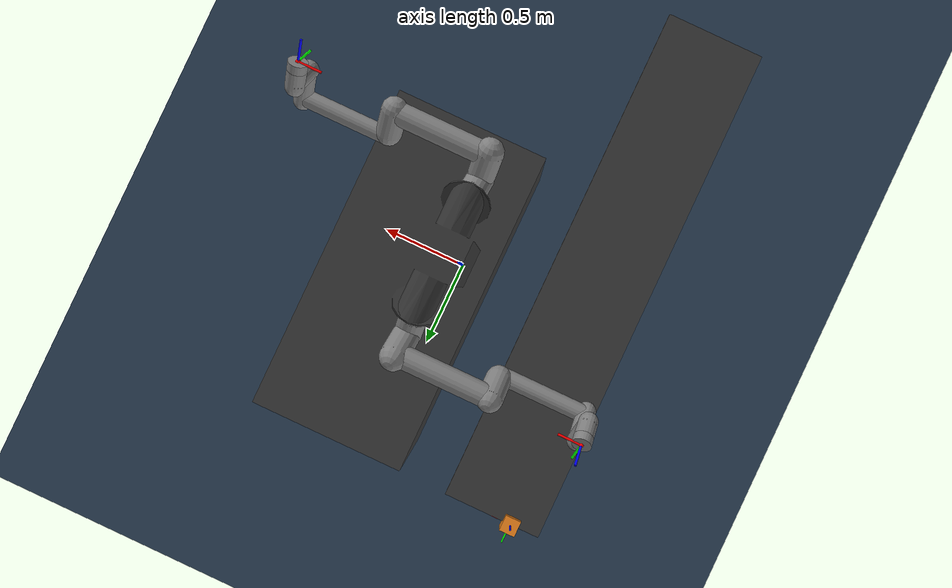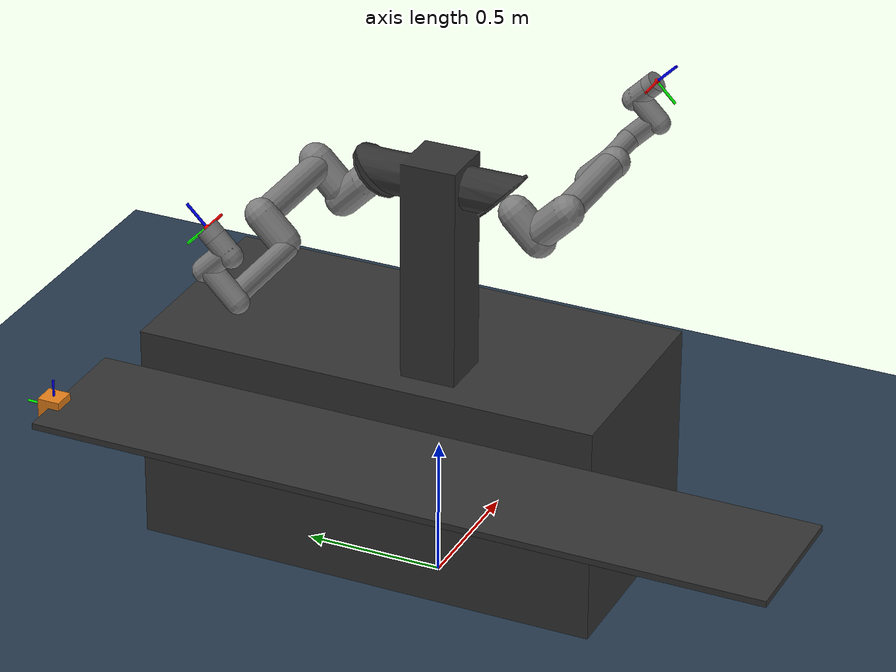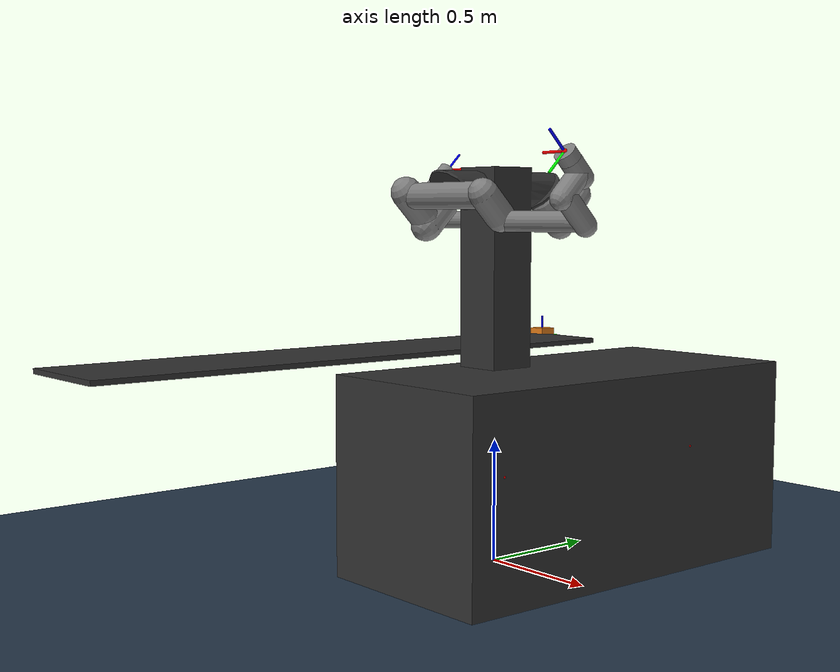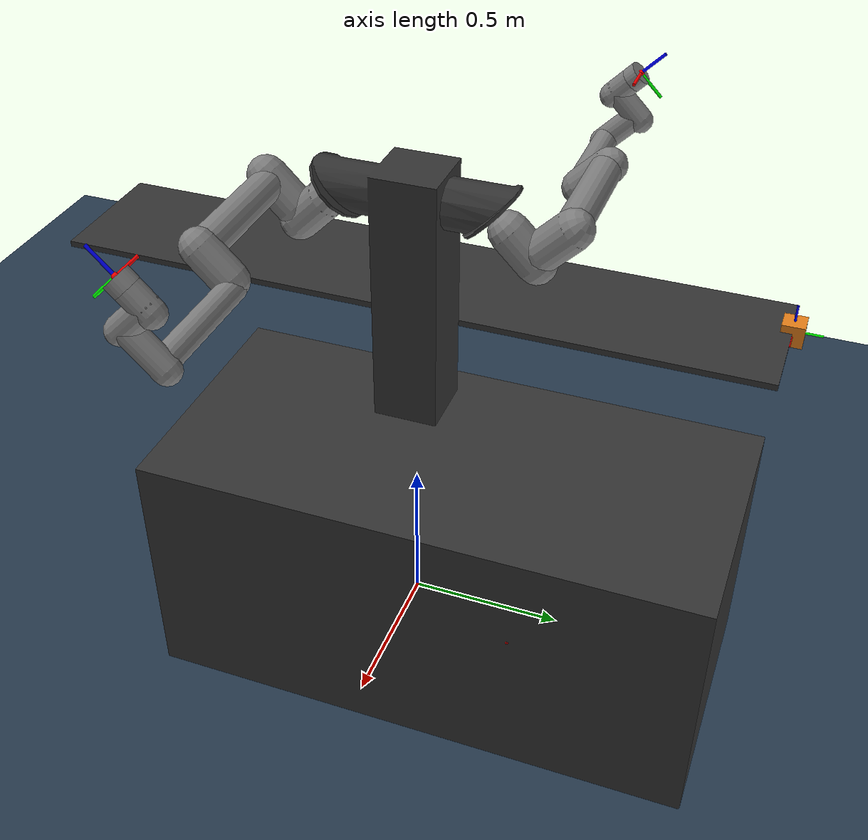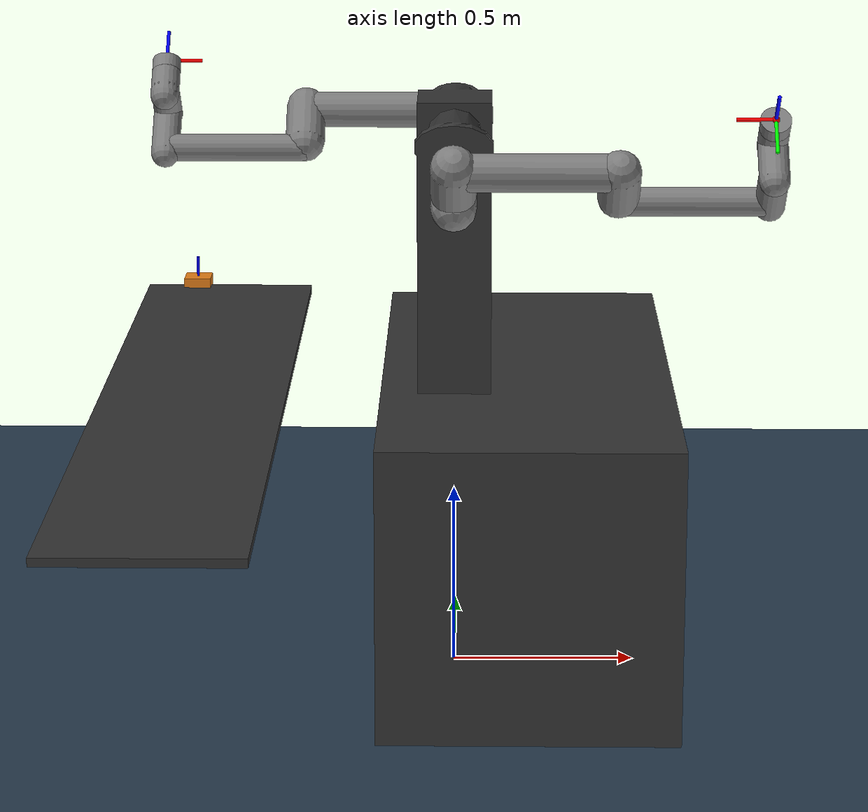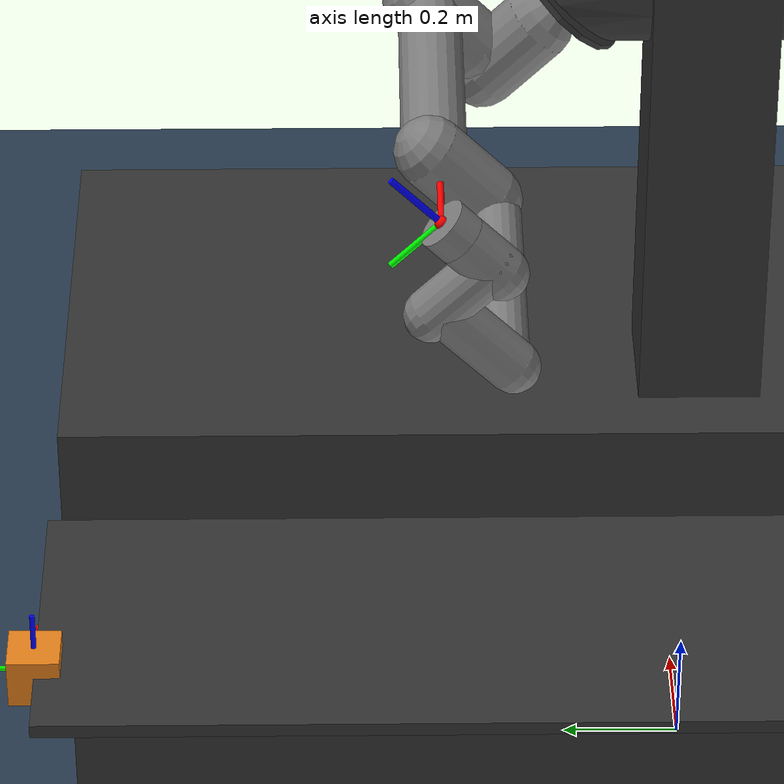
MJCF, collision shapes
<mujoco model="ur5e scene">
  <include file="dual_ur5e.xml"/>

  <statistic center="0.3 0 0.3" extent="0.8" meansize="0.08"/>

  <visual>
    <headlight diffuse="0.6 0.6 0.6" ambient="0.1 0.1 0.1" specular="0 0 0"/>
    <global azimuth="120" elevation="-20"/>
  </visual>

  <asset>
    <texture name="grid" type="2d" builtin="checker" rgb1=".2 .3 .4" rgb2=".1 0.15 0.2" width="512" height="512"
      mark="cross" markrgb=".8 .8 .8"/>
    <material name="grid" texture="grid" texrepeat="1 1" texuniform="true"/>
    <!-- import dual_ur5e_base_fixed.obj-->
    <mesh name="custom_base_mesh" file="custom/dual_ur5e_base_fixed.obj" scale="0.001 0.001 0.001"/>
    <material name="base_mat" rgba="0.2 0.2 0.2 1"/>
    <mesh name="custom_worktable_mesh" file="custom/worktable_fixed.obj" scale="0.001 0.001 0.001"/>
    <material name="worktable_mat" rgba="0.2 0.2 0.2 1"/>
  </asset>

  <worldbody>
    <light pos="0 0 1.5" directional="true"/>
    <geom name="floor" size="3 3 0.01" type="plane" material="grid"/>
    <body name="right_target" pos="0.5 -0.5 .5" quat="1 0 0 0" mocap="true">
      <!-- X-axis arrow shaft -->
      <geom name="right_target_x_shaft" type="cylinder" size="0.005 0.05" pos="0.05 0 0" zaxis="1 0 0" rgba="1 0 0 1" contype="0" conaffinity="0" group="1"/>
      <!-- Y-axis arrow shaft -->
      <geom name="right_target_y_shaft" type="cylinder" size="0.005 0.05" pos="0 0.05 0" zaxis="0 1 0" rgba="0 1 0 1" contype="0" conaffinity="0" group="1"/>
      <!-- Z-axis arrow shaft -->
      <geom name="right_target_z_shaft" type="cylinder" size="0.005 0.05" pos="0 0 0.05" zaxis="0 0 1" rgba="0 0 1 1" contype="0" conaffinity="0" group="1"/>
      <site type="sphere" size="0.01" rgba="0 0 1 1" group="1"/>
    </body>
    <body name="left_target" pos="0.5 0.5 .5" quat="1 0 0 0" mocap="true">
      <!-- X-axis arrow shaft -->
      <geom name="left_target_x_shaft" type="cylinder" size="0.005 0.05" pos="0.05 0 0" zaxis="1 0 0" rgba="1 0 0 1" contype="0" conaffinity="0" group="1"/>
      <!-- Y-axis arrow shaft -->
      <geom name="left_target_y_shaft" type="cylinder" size="0.005 0.05" pos="0 0.05 0" zaxis="0 1 0" rgba="0 1 0 1" contype="0" conaffinity="0" group="1"/>
      <!-- Z-axis arrow shaft -->
      <geom name="left_target_z_shaft" type="cylinder" size="0.005 0.05" pos="0 0 0.05" zaxis="0 0 1" rgba="0 0 1 1" contype="0" conaffinity="0" group="1"/>
      <site type="sphere" size="0.01" rgba="0 0 1 1" group="1"/>
    </body>
    <!-- X-axis arrow shaft -->
    <geom name="world_x_shaft" type="cylinder" size="0.01 0.1" pos="0.1 0 0.0" zaxis="1 0 0" rgba="1 0 0 1" contype="0" conaffinity="0" group="1"/>
    <!-- Y-axis arrow shaft -->
    <geom name="world_y_shaft" type="cylinder" size="0.01 0.1" pos="0 0.1 0.0" zaxis="0 1 0" rgba="0 1 0 1" contype="0" conaffinity="0" group="1"/>
    <!-- Z-axis arrow shaft -->
    <geom name="world_z_shaft" type="cylinder" size="0.01 0.2" pos="0 0 0.2" zaxis="0 0 1" rgba="0 0 1 1" contype="0" conaffinity="0" group="1"/>

    <!-- Rotate the imported mesh +90deg around X (quat is w x y z) -->
    <geom name="base_vis" type="mesh" mesh="custom_base_mesh" material="base_mat" pos="0.2 0.2 0"
          quat="0.5 0.5 -0.5 -0.5" contype="0" conaffinity="0"/>
    <!-- Same mesh but enabled for collision -->
    <geom name="base_col" type="mesh" mesh="custom_base_mesh" material="base_mat" pos="0.2 0.2 0"
          quat="0.5 0.5 -0.5 -0.5"
          contype="1" conaffinity="1" friction="1 0.01 0.001"
          solimp="0.9 0.95 0.001" solref="0.02 1"/>
    <body name="worktable" pos="-1.25 1.05 0">
      <!-- 视觉工作台（不参与碰撞） -->
      <geom name="worktable_vis" type="mesh" mesh="custom_worktable_mesh" material="worktable_mat"
            contype="0" conaffinity="0"
            quat="0.5 0.5 -0.5 -0.5"/>

      <!-- 碰撞工作台：用 primitive 提升稳定性 -->
      <geom name="worktable_top" type="box"
            size="0.25 1.3 0.01115"
            pos="0.55 -1.3 0.811"
            material="worktable_mat"
            friction="2 0.1 0.01"
            solimp="0.9 0.95 0.001"
            solref="0.02 1"
            condim="4"
            group="0"
            contype="1" conaffinity="1"/>
    </body>

    <!-- 可抓取的动态物体（free joint 只能放在 worldbody 顶层） -->
    <body name="target_object" pos="-0.8 1.05 0.81">
      <freejoint/>
      <!-- 方块：用 box 替代球，box 的 size 参数是半尺寸 -->
      <geom name="target_object_geom" type="box" size="0.04 0.04 0.04"
            rgba="0.9 0.5 0.1 1"
            density="800"
            friction="1 0.3 0.1"
            solimp="0.9 0.95 0.001"
            solref="0.01 1"
            contype="1" conaffinity="1" group="1"/>

      <!-- 方块坐标轴（视觉用，跟随 body 姿态旋转） -->
      <geom name="target_object_x_axis" type="cylinder" size="0.004 0.05" pos="0.05 0 0" zaxis="1 0 0"
            rgba="1 0 0 1" contype="0" conaffinity="0" group="2"/>
      <geom name="target_object_y_axis" type="cylinder" size="0.004 0.05" pos="0 0.05 0" zaxis="0 1 0"
            rgba="0 1 0 1" contype="0" conaffinity="0" group="2"/>
      <geom name="target_object_z_axis" type="cylinder" size="0.004 0.05" pos="0 0 0.05" zaxis="0 0 1"
            rgba="0 0 1 1" contype="0" conaffinity="0" group="2"/>

      <site name="target_object_site" pos="0 0 0" size="0.005" rgba="0 0 1 1" group="1"/>
    </body>
  </worldbody>

  <!-- 末端腕部与桌面碰撞：在抓取/对齐方块时 eef 胶囊易沿桌面“刮蹭”，导致持续接触与抖动。
       仅排除 wrist_3 与桌面子树；前臂/上臂仍可与桌面碰撞，方块-桌面碰撞不受影响（方块不在 worktable body 下）。 -->
  <contact>
    <exclude body1="worktable" body2="left_wrist_3_link"/>
    <exclude body1="worktable" body2="right_wrist_3_link"/>
  </contact>

  <!-- 只在该场景启用 freejoint，因此 keyframe 也需要匹配该场景的 nq（=19） -->
  <keyframe>
    <key name="home"
         qpos="-0.377 -0.628 0.88 4.9 2.2 -1.07 0.314 -2.45 -1.16 -1.63 -2.2 -2.01 -1.1 1.05 0.766 1 0 0 0"
         ctrl="-0.377 -0.628 0.88 4.9 2.2 -1.07 0.314 -2.45 -1.16 -1.63 -2.2 -2.01"/>
         <!-- qpos="-0.5548 -0.82903139  2.07572008 -0.67998028  1.52733763  2.61031443 0.05  -2.86530703 -1.99002441  1.0124655   1.77796691 -2.41553568 -1.1 1.05 0.766 1 0 0 0" -->
    <key name="zero"
         qpos="0 0 0 0 0 0 0 0 0 0 0 0 -1.1 1.05 0.766 1 0 0 0"
         ctrl="0 0 0 0 0 0 0 0 0 0 0 0"/>
  </keyframe>
</mujoco>

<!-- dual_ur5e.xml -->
<mujoco model="dual_ur5e">
    <compiler angle="radian" meshdir="assets" autolimits="true" eulerseq="zyx"/>

    <option integrator="implicitfast"/>

    <default>
        <default class="ur5e">
            <default class="visual">
                <geom type="mesh" contype="0" conaffinity="0" group="2"/>
            </default>
            <default class="collision">
                <geom type="capsule" group="3"/>
                <default class="eef_collision">
                    <geom type="cylinder"/>
                </default>
            </default>
            <joint axis="0 1 0" range="-6.28319 6.28319"/>
            <default class="joint_limited">
                <joint range="-3.1415 3.1415"/>
            </default>
            <default class="position">
                <!-- Shoulder/pan: lower kp/kv than stock UR XML to avoid PD limit-cycles
                     (tiny ctrl changes still produce large torques when kp~700). -->
                <position ctrlrange="-6.2831 6.2831" kp="380" kv="140" forcerange="-60 60"/>
                <default class="position_limited">
                    <!-- Elbow joints -->
                    <position ctrlrange="-3.1415 3.1415" kp="350" kv="130" forcerange="-45 45"/>
                </default>
                <default class="position_small">
                    <!-- Wrist joints: slightly reduce tracking gains -->
                    <position kp="180" kv="60" forcerange="-12 12"/>
                </default>
            </default>
        </default>
    </default>

    <asset>
        <material name="black" rgba="0.033 0.033 0.033 1"/>
        <material name="jointgray" rgba="0.278 0.278 0.278 1"/>
        <material name="linkgray" rgba="0.82 0.82 0.82 1"/>
        <material name="urblue" rgba="0.49 0.678 0.8 1"/>

        <mesh file="base_0.obj"/>
        <mesh file="base_1.obj"/>
        <mesh file="shoulder_0.obj"/>
        <mesh file="shoulder_1.obj"/>
        <mesh file="shoulder_2.obj"/>
        <mesh file="upperarm_0.obj"/>
        <mesh file="upperarm_1.obj"/>
        <mesh file="upperarm_2.obj"/>
        <mesh file="upperarm_3.obj"/>
        <mesh file="forearm_0.obj"/>
        <mesh file="forearm_1.obj"/>
        <mesh file="forearm_2.obj"/>
        <mesh file="forearm_3.obj"/>
        <mesh file="wrist1_0.obj"/>
        <mesh file="wrist1_1.obj"/>
        <mesh file="wrist1_2.obj"/>
        <mesh file="wrist2_0.obj"/>
        <mesh file="wrist2_1.obj"/>
        <mesh file="wrist2_2.obj"/>
        <mesh file="wrist3.obj"/>
    </asset>

    <worldbody>
        <light diffuse=".5 .5 .5" pos="0 0 4" dir="0 0 -1"/>

        <!-- Common world frame named 'base' -->
        <body name="base" pos="0 0 0">
            <!-- Optional: a visual for the world base -->
        </body>

        <!-- Left Arm -->
        <body name="left_robot_base" pos="0 0.232 1.5" quat="0 0 0.923880 0.382683" childclass="ur5e">

            <inertial mass="4" pos="0 0 0" diaginertia="0.00443333156 0.00443333156 0.0072"/>
            <geom mesh="base_0" material="black" class="visual"/>
            <geom mesh="base_1" material="jointgray" class="visual"/>
            <body name="left_shoulder_link" pos="0 0 0.163">
                <inertial mass="3.7" pos="0 0 0" diaginertia="0.0102675 0.0102675 0.00666"/>
                <joint name="left_shoulder_pan_joint" axis="0 0 1"/>
                <!-- Allow shoulder pan rotation (not locked to home) -->
                <geom mesh="shoulder_0" material="urblue" class="visual"/>
                <geom mesh="shoulder_1" material="black" class="visual"/>
                <geom mesh="shoulder_2" material="jointgray" class="visual"/>
                <geom class="collision" size="0.06 0.06" pos="0 0 -0.04"/>
                <body name="left_upper_arm_link" pos="0 0.138 0" quat="1 0 1 0">
                    <inertial mass="8.393" pos="0 0 0.2125" diaginertia="0.133886 0.133886 0.0151074"/>
                    <joint name="left_shoulder_lift_joint"/>
                    <geom mesh="upperarm_0" material="linkgray" class="visual"/>
                    <geom mesh="upperarm_1" material="black" class="visual"/>
                    <geom mesh="upperarm_2" material="jointgray" class="visual"/>
                    <geom mesh="upperarm_3" material="urblue" class="visual"/>
                    <geom class="collision" pos="0 -0.04 0" quat="1 1 0 0" size="0.06 0.06"/>
                    <geom class="collision" size="0.05 0.2" pos="0 0 0.2"/>
                    <body name="left_forearm_link" pos="0 -0.131 0.425">
                        <inertial mass="2.275" pos="0 0 0.196" diaginertia="0.0311796 0.0311796 0.004095"/>
                        <joint name="left_elbow_joint" class="joint_limited"/>
                        <geom mesh="forearm_0" material="urblue" class="visual"/>
                        <geom mesh="forearm_1" material="linkgray" class="visual"/>
                        <geom mesh="forearm_2" material="black" class="visual"/>
                        <geom mesh="forearm_3" material="jointgray" class="visual"/>
                        <geom class="collision" pos="0 0.08 0" quat="1 1 0 0" size="0.055 0.06"/>
                        <geom class="collision" size="0.038 0.19" pos="0 0 0.2"/>
                        <body name="left_wrist_1_link" pos="0 0 0.392" quat="1 0 1 0">
                            <inertial mass="1.219" pos="0 0.127 0" diaginertia="0.0025599 0.0025599 0.0021942"/>
                            <joint name="left_wrist_1_joint"/>
                            <geom mesh="wrist1_0" material="black" class="visual"/>
                            <geom mesh="wrist1_1" material="urblue" class="visual"/>
                            <geom mesh="wrist1_2" material="jointgray" class="visual"/>
                            <geom class="collision" pos="0 0.05 0" quat="1 1 0 0" size="0.04 0.07"/>
                            <body name="left_wrist_2_link" pos="0 0.127 0">
                                <inertial mass="1.219" pos="0 0 0.1" diaginertia="0.0025599 0.0025599 0.0021942"/>
                                <joint name="left_wrist_2_joint" axis="0 0 1"/>
                                <geom mesh="wrist2_0" material="black" class="visual"/>
                                <geom mesh="wrist2_1" material="urblue" class="visual"/>
                                <geom mesh="wrist2_2" material="jointgray" class="visual"/>
                                <geom class="collision" size="0.04 0.06" pos="0 0 0.04"/>
                                <geom class="collision" pos="0 0.02 0.1" quat="1 1 0 0" size="0.04 0.04"/>
                                <body name="left_wrist_3_link" pos="0 0 0.1">
                                    <inertial mass="0.1879" pos="0 0.0771683 0" quat="1 0 0 1" diaginertia="0.000132134 9.90863e-05 9.90863e-05"/>
                                    <joint name="left_wrist_3_joint"/>
                                    <geom material="linkgray" mesh="wrist3" class="visual"/>
                                    <geom class="eef_collision" pos="0 0.08 0" quat="1 1 0 0" size="0.04 0.02"/>
                                    <site name="left_attachment_site" size="0.01" pos="0 0.1 0" quat="-1 1 1 1" rgba="1 0 0 1" group="1"/>
                                    <body name="left_tool0" pos="0 0.1 0" quat="0.70710678 -0.70710678 0 0">
                                        <geom name="left_tool0_x_shaft" type="cylinder" size="0.005 0.05" pos="0.05 0 0" zaxis="1 0 0" rgba="1 0 0 1" contype="0" conaffinity="0" group="1" class="visual"/>
                                        <geom name="left_tool0_y_shaft" type="cylinder" size="0.005 0.05" pos="0 0.05 0" zaxis="0 1 0" rgba="0 1 0 1" contype="0" conaffinity="0" group="1" class="visual"/>
                                        <geom name="left_tool0_z_shaft" type="cylinder" size="0.005 0.05" pos="0 0 0.05" zaxis="0 0 1" rgba="0 0 1 1" contype="0" conaffinity="0" group="1" class="visual"/>
                                        <site name="left_tool0_site" size="0.01" pos="0 0 0" rgba="0 1 0 1" group="1"/>
                                    </body>
                                </body>
                            </body>
                        </body>
                    </body>
                </body>
            </body>
        </body>
        <!-- Right Arm -->
        <body name="right_robot_base" pos="0 -0.232 1.5" quat="0.382683 0.923880 0. 0." childclass="ur5e">

            <inertial mass="4" pos="0 0 0" diaginertia="0.00443333156 0.00443333156 0.0072"/>
            <geom mesh="base_0" material="black" class="visual"/>
            <geom mesh="base_1" material="jointgray" class="visual"/>
            <body name="right_shoulder_link" pos="0 0 0.163">
                <inertial mass="3.7" pos="0 0 0" diaginertia="0.0102675 0.0102675 0.00666"/>
                <joint name="right_shoulder_pan_joint" axis="0 0 1"/>
                <!-- Allow shoulder pan rotation (not overly constrained) -->
                <geom mesh="shoulder_0" material="urblue" class="visual"/>
                <geom mesh="shoulder_1" material="black" class="visual"/>
                <geom mesh="shoulder_2" material="jointgray" class="visual"/>
                <geom class="collision" size="0.06 0.06" pos="0 0 -0.04"/>
                <body name="right_upper_arm_link" pos="0 0.138 0" quat="1 0 1 0">
                    <inertial mass="8.393" pos="0 0 0.2125" diaginertia="0.133886 0.133886 0.0151074"/>
                    <joint name="right_shoulder_lift_joint"/>
                    <geom mesh="upperarm_0" material="linkgray" class="visual"/>
                    <geom mesh="upperarm_1" material="black" class="visual"/>
                    <geom mesh="upperarm_2" material="jointgray" class="visual"/>
                    <geom mesh="upperarm_3" material="urblue" class="visual"/>
                    <geom class="collision" pos="0 -0.04 0" quat="1 1 0 0" size="0.06 0.06"/>
                    <geom class="collision" size="0.05 0.2" pos="0 0 0.2"/>
                    <body name="right_forearm_link" pos="0 -0.131 0.425">
                        <inertial mass="2.275" pos="0 0 0.196" diaginertia="0.0311796 0.0311796 0.004095"/>
                        <joint name="right_elbow_joint" class="joint_limited"/>
                        <geom mesh="forearm_0" material="urblue" class="visual"/>
                        <geom mesh="forearm_1" material="linkgray" class="visual"/>
                        <geom mesh="forearm_2" material="black" class="visual"/>
                        <geom mesh="forearm_3" material="jointgray" class="visual"/>
                        <geom class="collision" pos="0 0.08 0" quat="1 1 0 0" size="0.055 0.06"/>
                        <geom class="collision" size="0.038 0.19" pos="0 0 0.2"/>
                        <body name="right_wrist_1_link" pos="0 0 0.392" quat="1 0 1 0">
                            <inertial mass="1.219" pos="0 0.127 0" diaginertia="0.0025599 0.0025599 0.0021942"/>
                            <joint name="right_wrist_1_joint"/>
                            <geom mesh="wrist1_0" material="black" class="visual"/>
                            <geom mesh="wrist1_1" material="urblue" class="visual"/>
                            <geom mesh="wrist1_2" material="jointgray" class="visual"/>
                            <geom class="collision" pos="0 0.05 0" quat="1 1 0 0" size="0.04 0.07"/>
                            <body name="right_wrist_2_link" pos="0 0.127 0">
                                <inertial mass="1.219" pos="0 0 0.1" diaginertia="0.0025599 0.0025599 0.0021942"/>
                                <joint name="right_wrist_2_joint" axis="0 0 1"/>
                                <geom mesh="wrist2_0" material="black" class="visual"/>
                                <geom mesh="wrist2_1" material="urblue" class="visual"/>
                                <geom mesh="wrist2_2" material="jointgray" class="visual"/>
                                <geom class="collision" size="0.04 0.06" pos="0 0 0.04"/>
                                <geom class="collision" pos="0 0.02 0.1" quat="1 1 0 0" size="0.04 0.04"/>
                                <body name="right_wrist_3_link" pos="0 0 0.1">
                                    <inertial mass="0.1879" pos="0 0.0771683 0" quat="1 0 0 1" diaginertia="0.000132134 9.90863e-05 9.90863e-05"/>
                                    <joint name="right_wrist_3_joint"/>
                                    <geom material="linkgray" mesh="wrist3" class="visual"/>
                                    <geom class="eef_collision" pos="0 0.08 0" quat="1 1 0 0" size="0.04 0.02"/>
                                    <site name="right_attachment_site" size="0.01" pos="0 0.1 0" quat="-1 1 1 1" rgba="1 0 0 1" group="1"/>
                                    <body name="right_tool0" pos="0 0.1 0" quat="0.70710678 -0.70710678 0 0">
                                        <geom name="right_tool0_x_shaft" type="cylinder" size="0.005 0.05" pos="0.05 0 0" zaxis="1 0 0" rgba="1 0 0 1" contype="0" conaffinity="0" group="1" class="visual"/>
                                        <geom name="right_tool0_y_shaft" type="cylinder" size="0.005 0.05" pos="0 0.05 0" zaxis="0 1 0" rgba="0 1 0 1" contype="0" conaffinity="0" group="1" class="visual"/>
                                        <geom name="right_tool0_z_shaft" type="cylinder" size="0.005 0.05" pos="0 0 0.05" zaxis="0 0 1" rgba="0 0 1 1" contype="0" conaffinity="0" group="1" class="visual"/>
                                        <site name="right_tool0_site" size="0.01" pos="0 0 0" rgba="0 1 0 1" group="1"/>
                                    </body>
                                </body>
                            </body>
                        </body>
                    </body>
                </body>
            </body>
        </body>

    </worldbody>

    <actuator>
        <!-- Left Arm Actuators -->
        <position class="position" name="left_shoulder_pan_joint" joint="left_shoulder_pan_joint"/>
        <position class="position" name="left_shoulder_lift_joint" joint="left_shoulder_lift_joint"/>
        <position class="position_limited" name="left_elbow_joint" joint="left_elbow_joint"/>
        <position class="position_small" name="left_wrist_1_joint" joint="left_wrist_1_joint"/>
        <position class="position_small" name="left_wrist_2_joint" joint="left_wrist_2_joint"/>
        <position class="position_small" name="left_wrist_3_joint" joint="left_wrist_3_joint"/>
        <!-- Right Arm Actuators -->
        <position class="position" name="right_shoulder_pan_joint" joint="right_shoulder_pan_joint"/>
        <position class="position" name="right_shoulder_lift_joint" joint="right_shoulder_lift_joint"/>
        <position class="position_limited" name="right_elbow_joint" joint="right_elbow_joint"/>
        <position class="position_small" name="right_wrist_1_joint" joint="right_wrist_1_joint"/>
        <position class="position_small" name="right_wrist_2_joint" joint="right_wrist_2_joint"/>
        <position class="position_small" name="right_wrist_3_joint" joint="right_wrist_3_joint"/>
    </actuator>

</mujoco>
